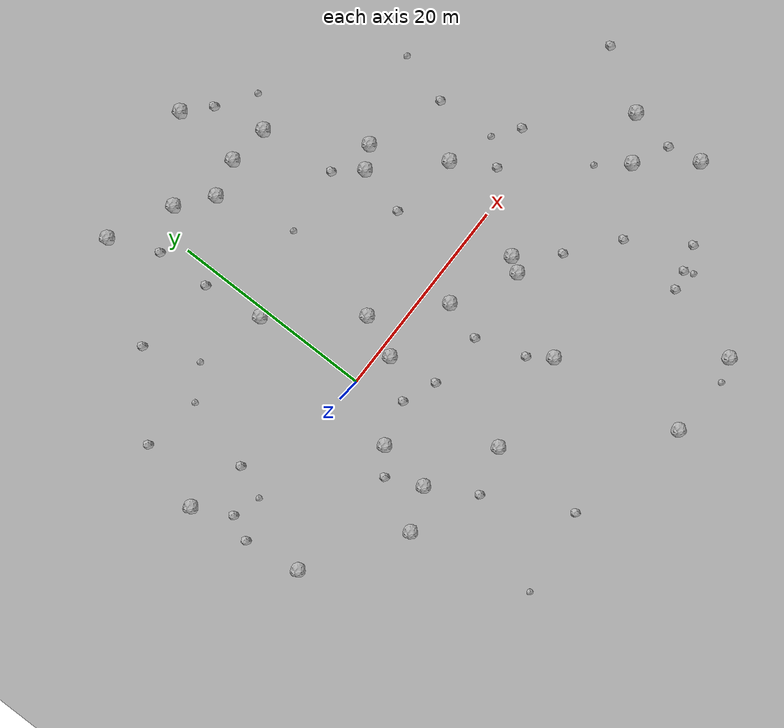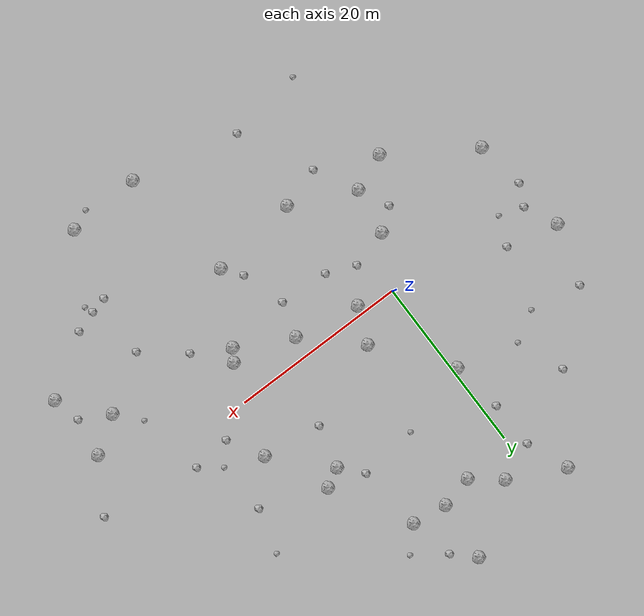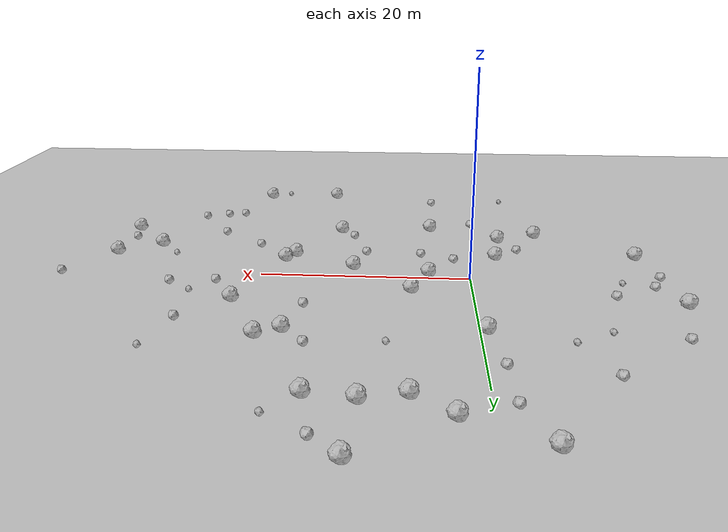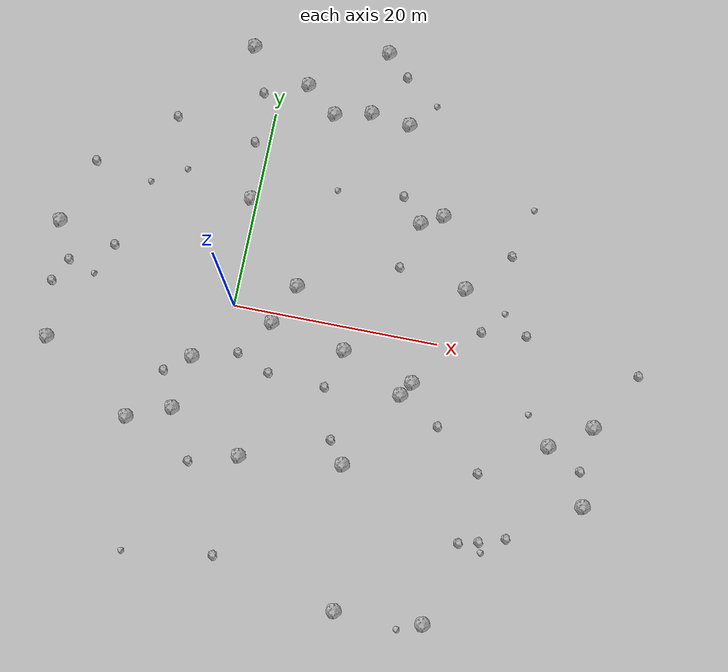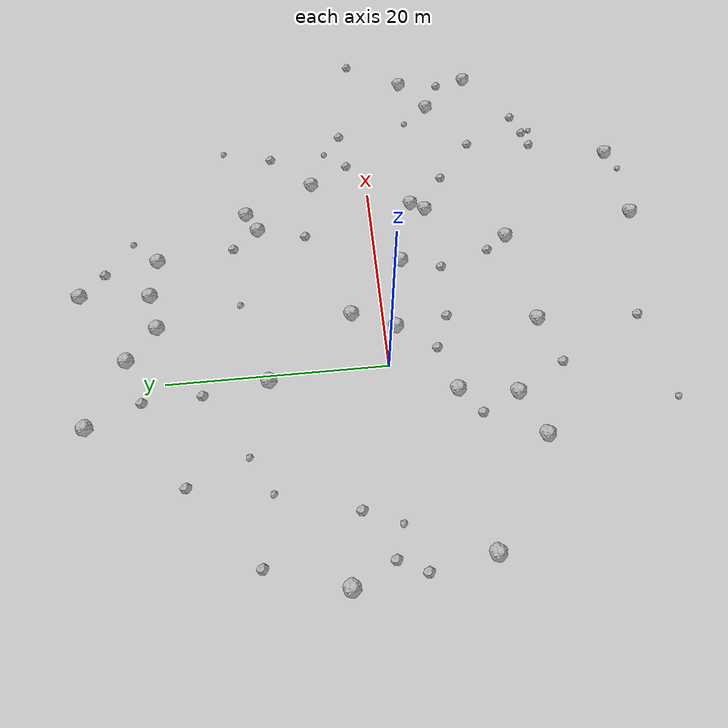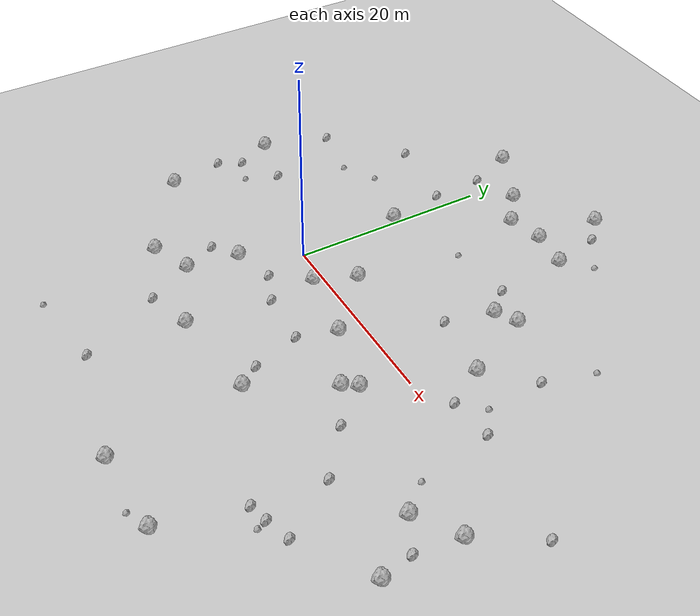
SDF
<sdf version="1.6">
 <world name="default">
  <include><uri>model://custom_ground</uri></include>
  <include><uri>model://sun</uri></include>
  <model name="rock1_0_0">
   <include><uri>model://rock1</uri><pose>13.286966571104543 -13.128523204111374 0.5 0 0 0</pose></include>
  </model>
  <model name="rock1_0_1">
   <include><uri>model://rock1</uri><pose>-7.793707440409598 -12.59993473266325 0.5 0 0 0</pose></include>
  </model>
  <model name="rock1_0_2">
   <include><uri>model://rock1</uri><pose>36.14987174534792 -12.637709527143485 0.5 0 0 0</pose></include>
  </model>
  <model name="rock1_0_3">
   <include><uri>model://rock1</uri><pose>-17.04982135187817 -6.526912249154119 0.5 0 0 0</pose></include>
  </model>
  <model name="rock1_0_4">
   <include><uri>model://rock1</uri><pose>15.106535435016454 -26.450218066727434 0.5 0 0 0</pose></include>
  </model>
  <model name="rock1_0_5">
   <include><uri>model://rock1</uri><pose>21.752715487701316 5.866929088554812 0.5 0 0 0</pose></include>
  </model>
  <model name="rock1_0_6">
   <include><uri>model://rock1</uri><pose>-18.55723021381221 4.996701976656759 0.5 0 0 0</pose></include>
  </model>
  <model name="rock1_0_7">
   <include><uri>model://rock1</uri><pose>5.799385806703327 21.02924688336863 0.5 0 0 0</pose></include>
  </model>
  <model name="rock1_0_8">
   <include><uri>model://rock1</uri><pose>3.509667257834767 -14.208108217476108 0.5 0 0 0</pose></include>
  </model>
  <model name="rock1_0_9">
   <include><uri>model://rock1</uri><pose>36.027442634918664 -5.090930907194043 0.5 0 0 0</pose></include>
  </model>
  <model name="rock1_0_10">
   <include><uri>model://rock1</uri><pose>5.643129902425908 3.0049528272487365 0.5 0 0 0</pose></include>
  </model>
  <model name="rock1_0_11">
   <include><uri>model://rock1</uri><pose>-3.556545310376233 26.602718643659692 0.5 0 0 0</pose></include>
  </model>
  <model name="rock1_0_12">
   <include><uri>model://rock1</uri><pose>3.9520932658781867 -1.0099971661050837 0.5 0 0 0</pose></include>
  </model>
  <model name="rock1_0_13">
   <include><uri>model://rock1</uri><pose>17.441158644482194 -5.551849124363983 0.5 0 0 0</pose></include>
  </model>
  <model name="rock1_0_14">
   <include><uri>model://rock1</uri><pose>9.946922414717822 28.525707108700843 0.5 0 0 0</pose></include>
  </model>
  <model name="rock1_0_15">
   <include><uri>model://rock1</uri><pose>11.312545177117652 -2.3449170186434074 0.5 0 0 0</pose></include>
  </model>
  <model name="rock1_0_16">
   <include><uri>model://rock1</uri><pose>13.363211874727554 21.351382634093063 0.5 0 0 0</pose></include>
  </model>
  <model name="rock1_0_17">
   <include><uri>model://rock1</uri><pose>23.345374887885406 -26.03592207319582 0.5 0 0 0</pose></include>
  </model>
  <model name="rock1_0_18">
   <include><uri>model://rock1</uri><pose>-3.6710129702892687 -10.931271194933252 0.5 0 0 0</pose></include>
  </model>
  <model name="rock1_0_19">
   <include><uri>model://rock1</uri><pose>18.319943370649312 -4.186400881097075 0.5 0 0 0</pose></include>
  </model>
  <model name="rock1_0_20">
   <include><uri>model://rock1</uri><pose>18.382123102040005 12.713205854098334 0.5 0 0 0</pose></include>
  </model>
  <model name="rock1_0_21">
   <include><uri>model://rock1</uri><pose>9.410440741263212 21.871752656022494 0.5 0 0 0</pose></include>
  </model>
  <model name="rock1_0_22">
   <include><uri>model://rock1</uri><pose>2.6106355768410587 23.58441520889 0.5 0 0 0</pose></include>
  </model>
  <model name="rock1_0_23">
   <include><uri>model://rock1</uri><pose>-2.894710866368648 -5.721683616664414 0.5 0 0 0</pose></include>
  </model>
  <model name="rock1_0_24">
   <include><uri>model://rock1</uri><pose>-0.5670920835291575 10.83933732982436 0.5 0 0 0</pose></include>
  </model>
  <model name="rock1_0_25">
   <include><uri>model://rock1</uri><pose>16.283090063141913 11.564673228973248 0.5 0 0 0</pose></include>
  </model>
  <model name="rock1_0_26">
   <include><uri>model://rock1</uri><pose>32.0852214428337 -7.691675619685704 0.5 0 0 0</pose></include>
  </model>
  <model name="rock2_0_0">
   <include><uri>model://rock2</uri><pose>39.511522620609846 0.6571161901722462 0.3 0 0 0</pose></include>
  </model>
  <model name="rock2_0_1">
   <include><uri>model://rock2</uri><pose>3.0526232841287566 -23.68685819998147 0.3 0 0 0</pose></include>
  </model>
  <model name="rock2_0_2">
   <include><uri>model://rock2</uri><pose>-17.97502402749664 -1.0013806443976634 0.3 0 0 0</pose></include>
  </model>
  <model name="rock2_0_3">
   <include><uri>model://rock2</uri><pose>-1.4679411579164494 16.68277257527894 0.3 0 0 0</pose></include>
  </model>
  <model name="rock2_0_4">
   <include><uri>model://rock2</uri><pose>29.577717610498347 -16.93845536459665 0.3 0 0 0</pose></include>
  </model>
  <model name="rock2_0_5">
   <include><uri>model://rock2</uri><pose>-1.665017264469494 21.958741096450666 0.3 0 0 0</pose></include>
  </model>
  <model name="rock2_0_6">
   <include><uri>model://rock2</uri><pose>24.007819171501424 1.9943056290617136 0.3 0 0 0</pose></include>
  </model>
  <model name="rock2_0_7">
   <include><uri>model://rock2</uri><pose>10.162541737498398 -6.188878850403462 0.3 0 0 0</pose></include>
  </model>
  <model name="rock2_0_8">
   <include><uri>model://rock2</uri><pose>11.736534085510765 -11.027163773135538 0.3 0 0 0</pose></include>
  </model>
  <model name="rock2_0_9">
   <include><uri>model://rock2</uri><pose>-16.526548982687093 11.744923736352675 0.3 0 0 0</pose></include>
  </model>
  <model name="rock2_0_10">
   <include><uri>model://rock2</uri><pose>27.12929005095026 -17.726646397858293 0.3 0 0 0</pose></include>
  </model>
  <model name="rock2_0_11">
   <include><uri>model://rock2</uri><pose>21.465349726095923 -7.81735851330534 0.3 0 0 0</pose></include>
  </model>
  <model name="rock2_0_12">
   <include><uri>model://rock2</uri><pose>28.347363490896868 2.437573717505657 0.3 0 0 0</pose></include>
  </model>
  <model name="rock2_0_13">
   <include><uri>model://rock2</uri><pose>1.343606360800763 -4.526268079513702 0.3 0 0 0</pose></include>
  </model>
  <model name="rock2_0_14">
   <include><uri>model://rock2</uri><pose>15.077482739098492 6.8241567899605045 0.3 0 0 0</pose></include>
  </model>
  <model name="rock2_0_15">
   <include><uri>model://rock2</uri><pose>35.4155768558774 -9.429178150903844 0.3 0 0 0</pose></include>
  </model>
  <model name="rock2_0_16">
   <include><uri>model://rock2</uri><pose>25.675337666096766 10.022350493966123 0.3 0 0 0</pose></include>
  </model>
  <model name="rock2_0_17">
   <include><uri>model://rock2</uri><pose>-5.3161917703541945 -7.543955118676603 0.3 0 0 0</pose></include>
  </model>
  <model name="rock2_0_18">
   <include><uri>model://rock2</uri><pose>12.231125513551802 26.37418858297334 0.3 0 0 0</pose></include>
  </model>
  <model name="rock2_0_19">
   <include><uri>model://rock2</uri><pose>14.156926066772662 13.99271335200752 0.3 0 0 0</pose></include>
  </model>
  <model name="rock2_0_20">
   <include><uri>model://rock2</uri><pose>-9.597423221930368 17.850422889719106 0.3 0 0 0</pose></include>
  </model>
  <model name="rock2_0_21">
   <include><uri>model://rock2</uri><pose>25.977006911203013 -11.45432211050678 0.3 0 0 0</pose></include>
  </model>
  <model name="rock2_0_22">
   <include><uri>model://rock2</uri><pose>25.287514110438224 -18.175200634990347 0.3 0 0 0</pose></include>
  </model>
  <model name="rock2_0_23">
   <include><uri>model://rock2</uri><pose>-16.827313394154544 1.3737659188770301 0.3 0 0 0</pose></include>
  </model>
  <model name="rock2_0_24">
   <include><uri>model://rock2</uri><pose>4.59993781038208 -5.864462377141102 0.3 0 0 0</pose></include>
  </model>
  <model name="rock2_0_25">
   <include><uri>model://rock2</uri><pose>-12.76827505918699 3.684847758152209 0.3 0 0 0</pose></include>
  </model>
  <model name="rock2_0_26">
   <include><uri>model://rock2</uri><pose>-1.1278754866212672 -15.582133359837568 0.3 0 0 0</pose></include>
  </model>
  <model name="rock3_0_0">
   <include><uri>model://rock3</uri><pose>-5.446146516498018 -24.934600741461296 0.2 0 0 0</pose></include>
  </model>
  <model name="rock3_0_1">
   <include><uri>model://rock3</uri><pose>21.056116553107678 -26.99694283174135 0.2 0 0 0</pose></include>
  </model>
  <model name="rock3_0_2">
   <include><uri>model://rock3</uri><pose>25.949683445074285 4.204262396968666 0.2 0 0 0</pose></include>
  </model>
  <model name="rock3_0_3">
   <include><uri>model://rock3</uri><pose>-14.122480906598271 0.4570074128183954 0.2 0 0 0</pose></include>
  </model>
  <model name="rock3_0_4">
   <include><uri>model://rock3</uri><pose>29.750074231977585 -5.0455477776044475 0.2 0 0 0</pose></include>
  </model>
  <model name="rock3_0_5">
   <include><uri>model://rock3</uri><pose>27.0532889936255 15.045558084281417 0.2 0 0 0</pose></include>
  </model>
  <model name="rock3_0_6">
   <include><uri>model://rock3</uri><pose>7.599403196936464 13.32390620876226 0.2 0 0 0</pose></include>
  </model>
  <model name="rock3_0_7">
   <include><uri>model://rock3</uri><pose>-10.761041200199237 10.69266523520892 0.2 0 0 0</pose></include>
  </model>
  <model name="rock3_0_8">
   <include><uri>model://rock3</uri><pose>27.474553162149064 -18.67319702473429 0.2 0 0 0</pose></include>
  </model>
  <model name="rock3_0_9">
   <include><uri>model://rock3</uri><pose>15.698589446201815 23.886129626916002 0.2 0 0 0</pose></include>
  </model>
  <model name="rock3_0_10">
   <include><uri>model://rock3</uri><pose>-7.467186900818582 12.629856344235293 0.2 0 0 0</pose></include>
  </model>
 </world>
</sdf>
